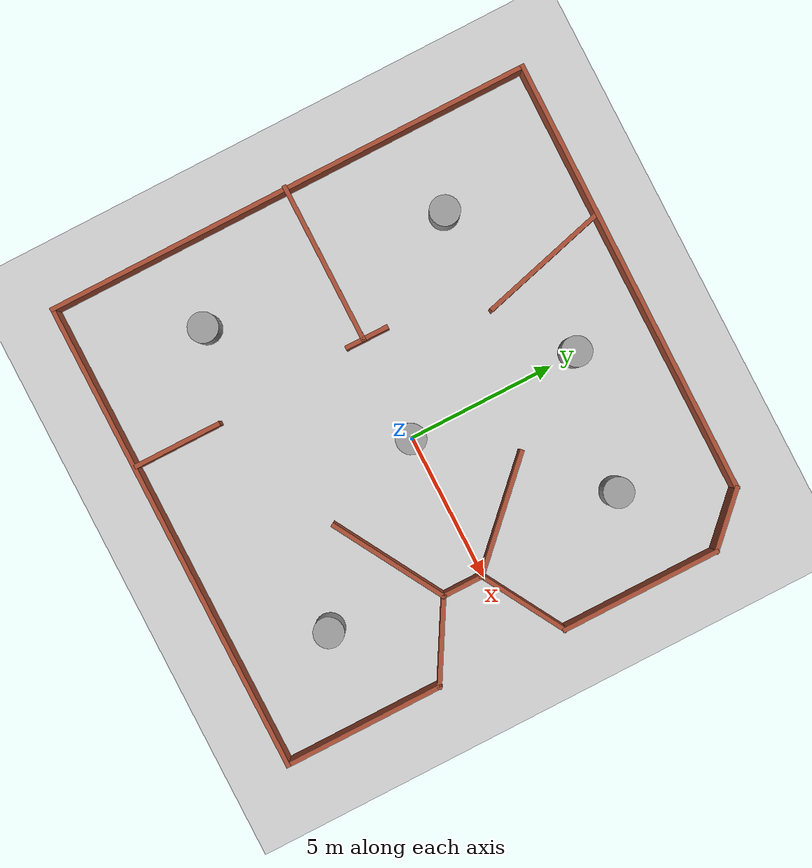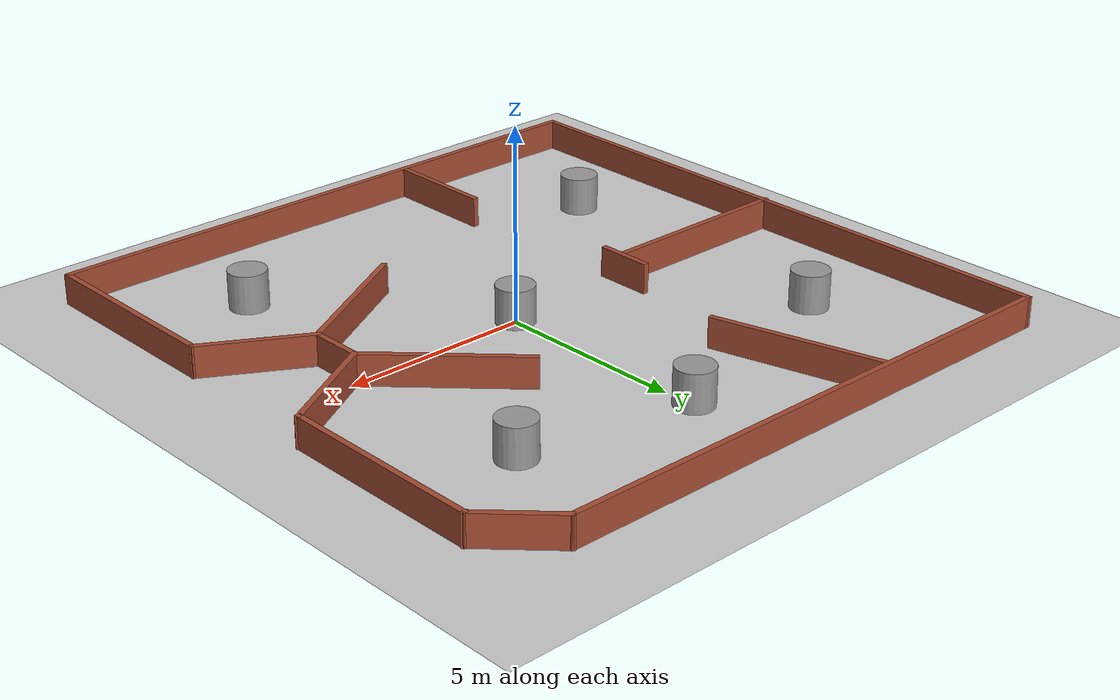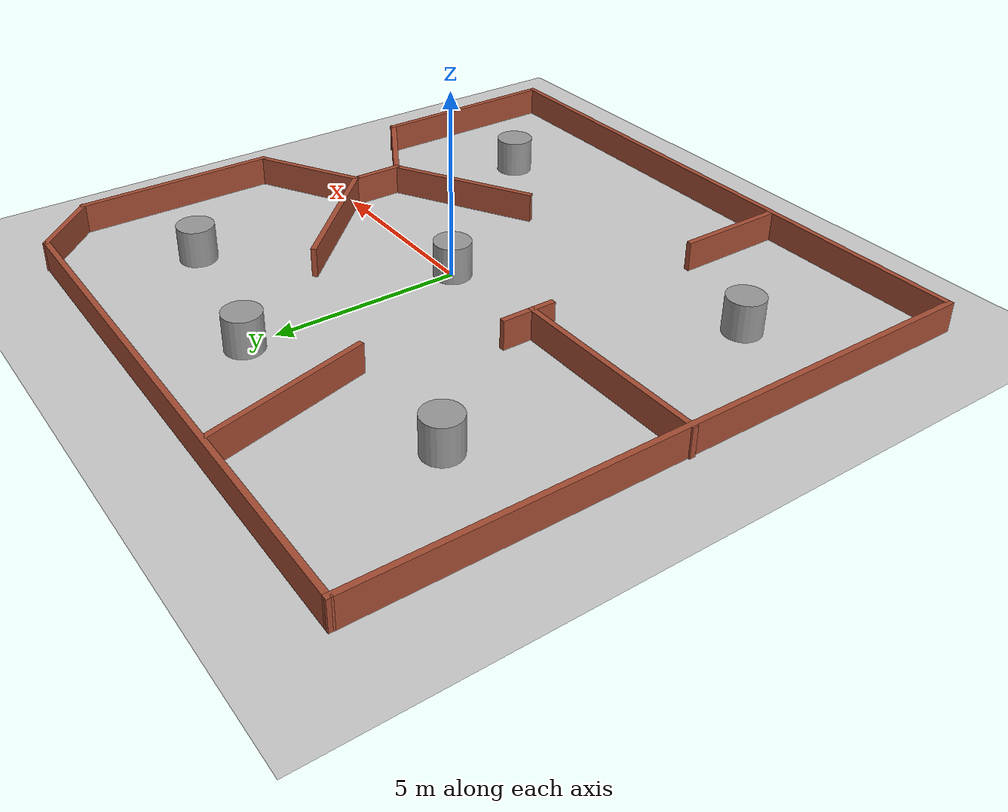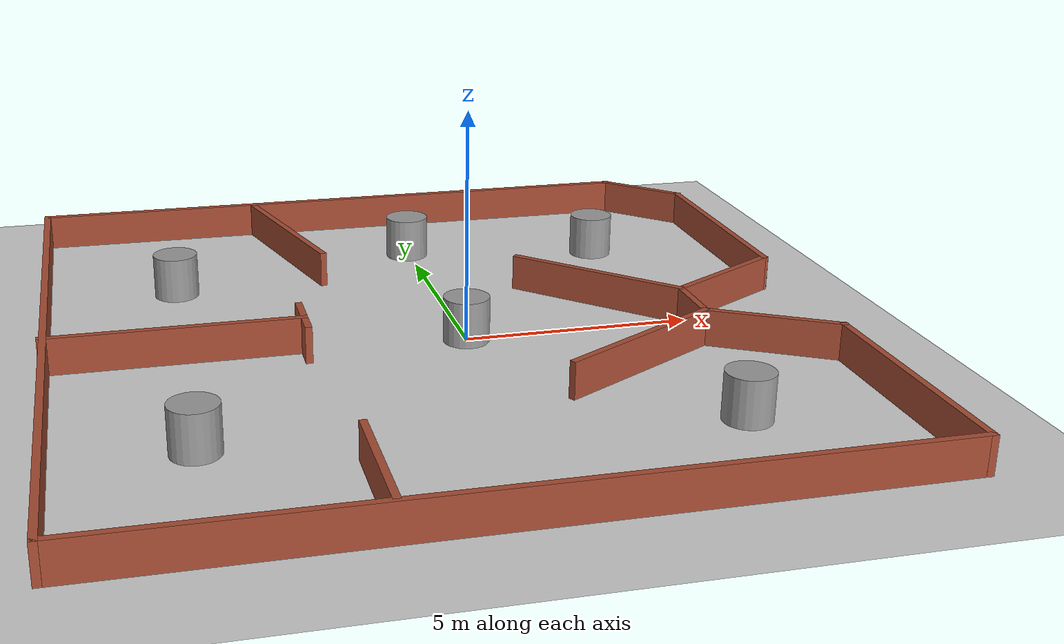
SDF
<sdf version="1.6">
 <world name="default">
  <light name="sun" type="directional">
   <pose>0 0 10 0 -0 0</pose>
   <diffuse>0.8 0.8 0.8 1</diffuse>
   <specular>0.2 0.2 0.2 1</specular>
   <attenuation>
    <range>1000</range>
    <constant>0.9</constant>
    <linear>0.01</linear>
    <quadratic>0.001</quadratic>
   </attenuation>
   <direction>-0.5 0.1 -0.9</direction>
   <spot><inner_angle>0</inner_angle><outer_angle>0</outer_angle><falloff>0</falloff></spot>
  </light>
  <model name="ground_plane">
   <static>1</static>
   <link name="link">
    <collision name="collision">
     <geometry><plane><normal>0 0 1</normal><size>100 100</size></plane></geometry>
     <surface>
      <contact><collide_bitmask>65535</collide_bitmask></contact>
      <friction><ode><mu>100</mu><mu2>50</mu2></ode></friction>
     </surface>
    </collision>
    <visual name="visual">
     <cast_shadows>0</cast_shadows>
     <geometry><plane><normal>0 0 1</normal><size>100 100</size></plane></geometry>
     <material>
      <script><uri>file://media/materials/scripts/gazebo.material</uri><name>Gazebo/Grey</name></script>
     </material>
    </visual>
   </link>
  </model>
  <gravity>0 0 -9.8</gravity>
  <magnetic_field>6e-06 2.3e-05 -4.2e-05</magnetic_field>
  <atmosphere type="adiabatic"/>
  <physics type="ode">
   <max_step_size>0.001</max_step_size>
   <real_time_factor>1</real_time_factor>
   <real_time_update_rate>1000</real_time_update_rate>
  </physics>
  <scene><ambient>0.4 0.4 0.4 1</ambient><background>0.7 0.7 0.7 1</background><shadows>1</shadows></scene>
  <spherical_coordinates>
   <surface_model>EARTH_WGS84</surface_model>
   <latitude_deg>0</latitude_deg>
   <longitude_deg>0</longitude_deg>
   <elevation>0</elevation>
   <heading_deg>0</heading_deg>
  </spherical_coordinates>
  <model name="squareBart">
   <pose>-0.62711 0.13893 0 0 -0 0</pose>
   <link name="Wall_10">
    <collision name="Wall_10_Collision">
     <geometry><box><size>5.5 0.15 0.8</size></box></geometry>
     <pose>0 0 0.4 0 -0 0</pose>
    </collision>
    <visual name="Wall_10_Visual">
     <pose>0 0 0.4 0 -0 0</pose>
     <geometry><box><size>5.5 0.15 0.8</size></box></geometry>
     <material>
      <script><uri>file://media/materials/scripts/gazebo.material</uri><name>Gazebo/Bricks</name></script>
      <ambient>1 1 1 1</ambient>
     </material>
     <meta><layer>0</layer></meta>
    </visual>
    <pose>8.16699 4.04978 0 0 -0 1.5708</pose>
   </link>
   <link name="Wall_11">
    <collision name="Wall_11_Collision">
     <geometry><box><size>2.25 0.15 0.8</size></box></geometry>
     <pose>0 0 0.4 0 -0 0</pose>
    </collision>
    <visual name="Wall_11_Visual">
     <pose>0 0 0.4 0 -0 0</pose>
     <geometry><box><size>2.25 0.15 0.8</size></box></geometry>
     <material>
      <script><uri>file://media/materials/scripts/gazebo.material</uri><name>Gazebo/Bricks</name></script>
      <ambient>1 1 1 1</ambient>
     </material>
     <meta><layer>0</layer></meta>
    </visual>
    <pose>7.42448 7.46727 0 0 -0 2.35619</pose>
   </link>
   <link name="Wall_12">
    <collision name="Wall_12_Collision">
     <geometry><box><size>14.9819 0.15 0.8</size></box></geometry>
     <pose>0 0 0.4 0 -0 0</pose>
    </collision>
    <visual name="Wall_12_Visual">
     <pose>0 0 0.4 0 -0 0</pose>
     <geometry><box><size>14.9819 0.15 0.8</size></box></geometry>
     <material>
      <script><uri>file://media/materials/scripts/gazebo.material</uri><name>Gazebo/Bricks</name></script>
      <ambient>1 1 1 1</ambient>
     </material>
     <meta><layer>0</layer></meta>
    </visual>
    <pose>-0.734015 8.25477 0 0 -0 3.13552</pose>
   </link>
   <link name="Wall_14">
    <collision name="Wall_14_Collision">
     <geometry><box><size>4.25 0.15 0.8</size></box></geometry>
     <pose>0 0 0.4 0 -0 0</pose>
    </collision>
    <visual name="Wall_14_Visual">
     <pose>0 0 0.4 0 -0 0</pose>
     <geometry><box><size>4.25 0.15 0.8</size></box></geometry>
     <material>
      <script><uri>file://media/materials/scripts/gazebo.material</uri><name>Gazebo/Bricks</name></script>
      <ambient>1 1 1 1</ambient>
     </material>
     <meta><layer>0</layer></meta>
    </visual>
    <pose>4.03249 1.27427 0 0 -0 2.35619</pose>
   </link>
   <link name="Wall_16">
    <collision name="Wall_16_Collision">
     <geometry><box><size>4.25 0.15 0.8</size></box></geometry>
     <pose>0 0 0.4 0 -0 0</pose>
    </collision>
    <visual name="Wall_16_Visual">
     <pose>0 0 0.4 0 -0 0</pose>
     <geometry><box><size>4.25 0.15 0.8</size></box></geometry>
     <material>
      <script><uri>file://media/materials/scripts/gazebo.material</uri><name>Gazebo/Bricks</name></script>
      <ambient>1 1 1 1</ambient>
     </material>
     <meta><layer>0</layer></meta>
    </visual>
    <pose>3.70649 -2.55023 0 0 -0 -2.61803</pose>
   </link>
   <link name="Wall_18">
    <collision name="Wall_18_Collision">
     <geometry><box><size>5.5 0.15 0.8</size></box></geometry>
     <pose>0 0 0.4 0 -0 0</pose>
    </collision>
    <visual name="Wall_18_Visual">
     <pose>0 0 0.4 0 -0 0</pose>
     <geometry><box><size>5.5 0.15 0.8</size></box></geometry>
     <material>
      <script><uri>file://media/materials/scripts/gazebo.material</uri><name>Gazebo/Bricks</name></script>
      <ambient>1 1 1 1</ambient>
     </material>
     <meta><layer>0</layer></meta>
    </visual>
    <pose>-5.52301 -0.066226 0 0 -0 0</pose>
   </link>
   <link name="Wall_20">
    <collision name="Wall_20_Collision">
     <geometry><box><size>3 0.15 0.8</size></box></geometry>
     <pose>0 0 0.4 0 -0 0</pose>
    </collision>
    <visual name="Wall_20_Visual">
     <pose>0 0 0.4 0 -0 0</pose>
     <geometry><box><size>3 0.15 0.8</size></box></geometry>
     <material>
      <script><uri>file://media/materials/scripts/gazebo.material</uri><name>Gazebo/Bricks</name></script>
      <ambient>1 1 1 1</ambient>
     </material>
     <meta><layer>0</layer></meta>
    </visual>
    <pose>-2.56901 -6.78323 0 0 -0 1.5708</pose>
   </link>
   <link name="Wall_22">
    <collision name="Wall_22_Collision">
     <geometry><box><size>4.5 0.15 0.8</size></box></geometry>
     <pose>0 0 0.4 0 -0 0</pose>
    </collision>
    <visual name="Wall_22_Visual">
     <pose>0 0 0.4 0 -0 0</pose>
     <geometry><box><size>4.5 0.15 0.8</size></box></geometry>
     <material>
      <script><uri>file://media/materials/scripts/gazebo.material</uri><name>Gazebo/Bricks</name></script>
      <ambient>1 1 1 1</ambient>
     </material>
     <meta><layer>0</layer></meta>
    </visual>
    <pose>-2.38701 6.08177 0 0 -0 1.83261</pose>
   </link>
   <link name="Wall_24">
    <collision name="Wall_24_Collision">
     <geometry><box><size>1.5 0.15 0.8</size></box></geometry>
     <pose>0 0 0.4 0 -0 0</pose>
    </collision>
    <visual name="Wall_24_Visual">
     <pose>0 0 0.4 0 -0 0</pose>
     <geometry><box><size>1.5 0.15 0.8</size></box></geometry>
     <material>
      <script><uri>file://media/materials/scripts/gazebo.material</uri><name>Gazebo/Bricks</name></script>
      <ambient>1 1 1 1</ambient>
     </material>
     <meta><layer>0</layer></meta>
    </visual>
    <pose>-2.84401 0.053774 0 0 -0 -1.5708</pose>
   </link>
   <link name="Wall_4">
    <collision name="Wall_4_Collision">
     <geometry><box><size>16.75 0.15 0.8</size></box></geometry>
     <pose>0 0 0.4 0 -0 0</pose>
    </collision>
    <visual name="Wall_4_Visual">
     <pose>0 0 0.4 0 -0 0</pose>
     <geometry><box><size>16.75 0.15 0.8</size></box></geometry>
     <material>
      <script><uri>file://media/materials/scripts/gazebo.material</uri><name>Gazebo/Bricks</name></script>
      <ambient>1 1 1 1</ambient>
     </material>
     <meta><layer>0</layer></meta>
    </visual>
    <pose>-8.15001 -0.000226 0 0 -0 -1.5708</pose>
   </link>
   <link name="Wall_5">
    <collision name="Wall_5_Collision">
     <geometry><box><size>16.25 0.15 0.8</size></box></geometry>
     <pose>0 0 0.4 0 -0 0</pose>
    </collision>
    <visual name="Wall_5_Visual">
     <pose>0 0 0.4 0 -0 0</pose>
     <geometry><box><size>16.25 0.15 0.8</size></box></geometry>
     <material>
      <script><uri>file://media/materials/scripts/gazebo.material</uri><name>Gazebo/Bricks</name></script>
      <ambient>1 1 1 1</ambient>
     </material>
     <meta><layer>0</layer></meta>
    </visual>
    <pose>-0.100015 -8.30022 0 0 -0 0</pose>
   </link>
   <link name="Wall_6">
    <collision name="Wall_6_Collision">
     <geometry><box><size>5.5 0.15 0.8</size></box></geometry>
     <pose>0 0 0.4 0 -0 0</pose>
    </collision>
    <visual name="Wall_6_Visual">
     <pose>0 0 0.4 0 -0 0</pose>
     <geometry><box><size>5.5 0.15 0.8</size></box></geometry>
     <material>
      <script><uri>file://media/materials/scripts/gazebo.material</uri><name>Gazebo/Bricks</name></script>
      <ambient>1 1 1 1</ambient>
     </material>
     <meta><layer>0</layer></meta>
    </visual>
    <pose>7.94998 -5.62523 0 0 -0 1.5708</pose>
   </link>
   <link name="Wall_7">
    <collision name="Wall_7_Collision">
     <geometry><box><size>3 0.15 0.8</size></box></geometry>
     <pose>0 0 0.4 0 -0 0</pose>
    </collision>
    <visual name="Wall_7_Visual">
     <pose>0 0 0.4 0 -0 0</pose>
     <geometry><box><size>3 0.15 0.8</size></box></geometry>
     <material>
      <script><uri>file://media/materials/scripts/gazebo.material</uri><name>Gazebo/Bricks</name></script>
      <ambient>1 1 1 1</ambient>
     </material>
     <meta><layer>0</layer></meta>
    </visual>
    <pose>6.71599 -2.23773 0 0 -0 2.61796</pose>
   </link>
   <link name="Wall_8">
    <collision name="Wall_8_Collision">
     <geometry><box><size>1.5 0.15 0.8</size></box></geometry>
     <pose>0 0 0.4 0 -0 0</pose>
    </collision>
    <visual name="Wall_8_Visual">
     <pose>0 0 0.4 0 -0 0</pose>
     <geometry><box><size>1.5 0.15 0.8</size></box></geometry>
     <material>
      <script><uri>file://media/materials/scripts/gazebo.material</uri><name>Gazebo/Bricks</name></script>
      <ambient>1 1 1 1</ambient>
     </material>
     <meta><layer>0</layer></meta>
    </visual>
    <pose>5.48198 -0.850226 0 0 -0 1.5708</pose>
   </link>
   <link name="Wall_9">
    <collision name="Wall_9_Collision">
     <geometry><box><size>3.25 0.15 0.8</size></box></geometry>
     <pose>0 0 0.4 0 -0 0</pose>
    </collision>
    <visual name="Wall_9_Visual">
     <pose>0 0 0.4 0 -0 0</pose>
     <geometry><box><size>3.25 0.15 0.8</size></box></geometry>
     <material>
      <script><uri>file://media/materials/scripts/gazebo.material</uri><name>Gazebo/Bricks</name></script>
      <ambient>1 1 1 1</ambient>
     </material>
     <meta><layer>0</layer></meta>
    </visual>
    <pose>6.82449 0.599774 0 0 -0 0.523547</pose>
   </link>
   <static>1</static>
  </model>
  <model name="unit_cylinder">
   <pose>-0.006219 -0.031324 0.499998 3e-06 -4e-06 0</pose>
   <link name="link">
    <inertial>
     <mass>1</mass>
     <inertia><ixx>0.145833</ixx><ixy>0</ixy><ixz>0</ixz><iyy>0.145833</iyy><iyz>0</iyz><izz>0.125</izz></inertia>
    </inertial>
    <collision name="collision">
     <geometry><cylinder><radius>0.5</radius><length>1</length></cylinder></geometry>
    </collision>
    <visual name="visual">
     <geometry><cylinder><radius>0.5</radius><length>1</length></cylinder></geometry>
     <material>
      <script><name>Gazebo/Grey</name><uri>file://media/materials/scripts/gazebo.material</uri></script>
     </material>
    </visual>
   </link>
  </model>
  <model name="unit_cylinder_0">
   <pose>4.18973 -5.09642 0.499992 -3e-06 -4e-06 -0</pose>
   <link name="link">
    <inertial>
     <mass>1</mass>
     <inertia><ixx>0.145833</ixx><ixy>0</ixy><ixz>0</ixz><iyy>0.145833</iyy><iyz>0</iyz><izz>0.125</izz></inertia>
    </inertial>
    <collision name="collision">
     <geometry><cylinder><radius>0.5</radius><length>1</length></cylinder></geometry>
    </collision>
    <visual name="visual">
     <geometry><cylinder><radius>0.5</radius><length>1</length></cylinder></geometry>
     <material>
      <script><name>Gazebo/Grey</name><uri>file://media/materials/scripts/gazebo.material</uri></script>
     </material>
    </visual>
   </link>
  </model>
  <model name="unit_cylinder_1">
   <pose>4.46344 4.96502 0.499993 -3e-06 -3e-06 0</pose>
   <link name="link">
    <inertial>
     <mass>1</mass>
     <inertia><ixx>0.145833</ixx><ixy>0</ixy><ixz>0</ixz><iyy>0.145833</iyy><iyz>0</iyz><izz>0.125</izz></inertia>
    </inertial>
    <collision name="collision">
     <geometry><cylinder><radius>0.5</radius><length>1</length></cylinder></geometry>
    </collision>
    <visual name="visual">
     <geometry><cylinder><radius>0.5</radius><length>1</length></cylinder></geometry>
     <material>
      <script><name>Gazebo/Grey</name><uri>file://media/materials/scripts/gazebo.material</uri></script>
     </material>
    </visual>
   </link>
  </model>
  <model name="unit_cylinder_2">
   <pose>-5.85946 4.17991 0.499997 3e-06 4e-06 -0</pose>
   <link name="link">
    <inertial>
     <mass>1</mass>
     <inertia><ixx>0.145833</ixx><ixy>0</ixy><ixz>0</ixz><iyy>0.145833</iyy><iyz>0</iyz><izz>0.125</izz></inertia>
    </inertial>
    <collision name="collision">
     <geometry><cylinder><radius>0.5</radius><length>1</length></cylinder></geometry>
    </collision>
    <visual name="visual">
     <geometry><cylinder><radius>0.5</radius><length>1</length></cylinder></geometry>
     <material>
      <script><name>Gazebo/Grey</name><uri>file://media/materials/scripts/gazebo.material</uri></script>
     </material>
    </visual>
   </link>
  </model>
  <model name="unit_cylinder_3">
   <pose>-6.08311 -4.20923 0.499993 -3e-06 -4e-06 -0</pose>
   <link name="link">
    <inertial>
     <mass>1</mass>
     <inertia><ixx>0.145833</ixx><ixy>0</ixy><ixz>0</ixz><iyy>0.145833</iyy><iyz>0</iyz><izz>0.125</izz></inertia>
    </inertial>
    <collision name="collision">
     <geometry><cylinder><radius>0.5</radius><length>1</length></cylinder></geometry>
    </collision>
    <visual name="visual">
     <geometry><cylinder><radius>0.5</radius><length>1</length></cylinder></geometry>
     <material>
      <script><name>Gazebo/Grey</name><uri>file://media/materials/scripts/gazebo.material</uri></script>
     </material>
    </visual>
   </link>
  </model>
  <model name="unit_cylinder_4">
   <pose>-0.057551 5.82624 0.499997 3e-06 4e-06 -0</pose>
   <link name="link">
    <inertial>
     <mass>1</mass>
     <inertia><ixx>0.145833</ixx><ixy>0</ixy><ixz>0</ixz><iyy>0.145833</iyy><iyz>0</iyz><izz>0.125</izz></inertia>
    </inertial>
    <collision name="collision">
     <geometry><cylinder><radius>0.5</radius><length>1</length></cylinder></geometry>
    </collision>
    <visual name="visual">
     <geometry><cylinder><radius>0.5</radius><length>1</length></cylinder></geometry>
     <material>
      <script><name>Gazebo/Grey</name><uri>file://media/materials/scripts/gazebo.material</uri></script>
     </material>
    </visual>
   </link>
  </model>
 </world>
</sdf>
